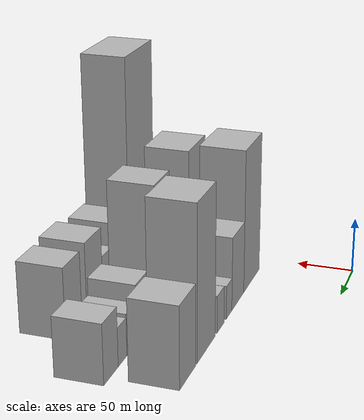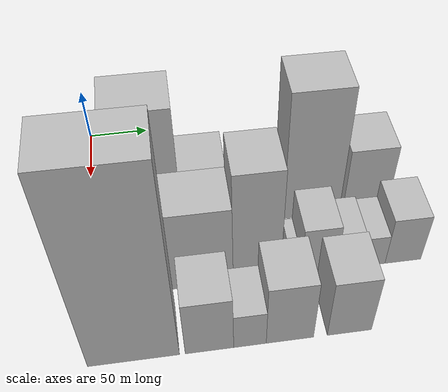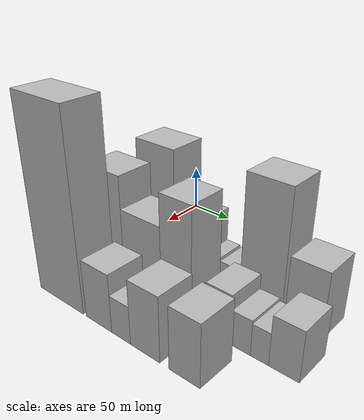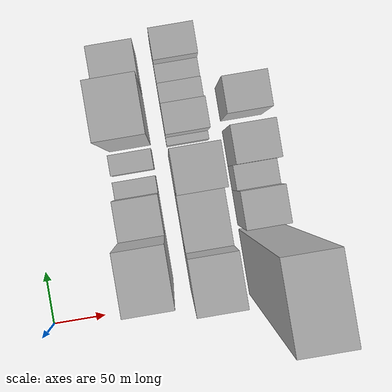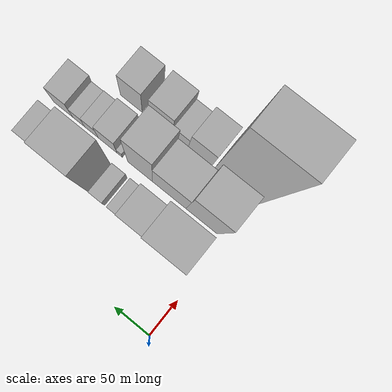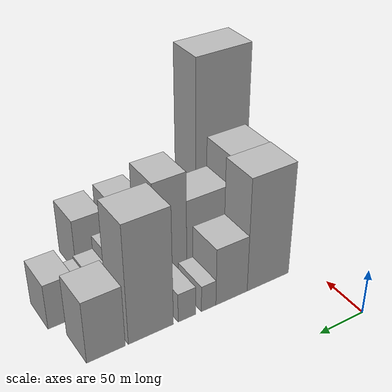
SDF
<sdf version="1.6">
 <world name="default">
  <model name="building_28">
   <static>1</static>
   <pose>100.0000 47.9363 0 0.000000 0.000000 0.000000</pose>
   <link name="link">
    <pose>0 0 64.50 0 0 0</pose>
    <collision name="collision"><geometry><box><size>40.0000 49.2560 129.0000</size></box></geometry></collision>
    <visual name="visual">
     <cast_shadows>0</cast_shadows>
     <geometry><box><size>40.0000 49.2560 129.0000</size></box></geometry>
     <material>
      <script>
       <uri>model://HANNAS_wall/materials/scripts</uri>
       <uri>model://HANNAS_wall/materials/textures</uri>
       <name>vrc/HANNAS_wall</name>
      </script>
     </material>
    </visual>
   </link>
  </model>
  <model name="building_29">
   <static>1</static>
   <pose>100.0000 90.3240 0 0.000000 0.000000 0.000000</pose>
   <link name="link">
    <pose>0 0 33.00 0 0 0</pose>
    <collision name="collision"><geometry><box><size>40.0000 35.5196 66.0000</size></box></geometry></collision>
    <visual name="visual">
     <cast_shadows>0</cast_shadows>
     <geometry><box><size>40.0000 35.5196 66.0000</size></box></geometry>
     <material>
      <script>
       <uri>model://HANNAS_wall/materials/scripts</uri>
       <uri>model://HANNAS_wall/materials/textures</uri>
       <name>vrc/HANNAS_wall</name>
      </script>
     </material>
    </visual>
   </link>
  </model>
  <model name="building_30">
   <static>1</static>
   <pose>100.0000 116.0856 0 0.000000 0.000000 0.000000</pose>
   <link name="link">
    <pose>0 0 15.00 0 0 0</pose>
    <collision name="collision"><geometry><box><size>40.0000 16.0036 30.0000</size></box></geometry></collision>
    <visual name="visual">
     <cast_shadows>0</cast_shadows>
     <geometry><box><size>40.0000 16.0036 30.0000</size></box></geometry>
     <material>
      <script>
       <uri>model://HANNAS_wall/materials/scripts</uri>
       <uri>model://HANNAS_wall/materials/textures</uri>
       <name>vrc/HANNAS_wall</name>
      </script>
     </material>
    </visual>
   </link>
  </model>
  <model name="building_31">
   <static>1</static>
   <pose>100.0000 139.5563 0 0.000000 0.000000 0.000000</pose>
   <link name="link">
    <pose>0 0 16.50 0 0 0</pose>
    <collision name="collision"><geometry><box><size>40.0000 18.9379 33.0000</size></box></geometry></collision>
    <visual name="visual">
     <cast_shadows>0</cast_shadows>
     <geometry><box><size>40.0000 18.9379 33.0000</size></box></geometry>
     <material>
      <script>
       <uri>model://HANNAS_wall/materials/scripts</uri>
       <uri>model://HANNAS_wall/materials/textures</uri>
       <name>vrc/HANNAS_wall</name>
      </script>
     </material>
    </visual>
   </link>
  </model>
  <model name="building_32">
   <static>1</static>
   <pose>100.0000 177.0604 0 0.000000 0.000000 0.000000</pose>
   <link name="link">
    <pose>0 0 66.00 0 0 0</pose>
    <collision name="collision"><geometry><box><size>40.0000 46.0703 132.0000</size></box></geometry></collision>
    <visual name="visual">
     <cast_shadows>0</cast_shadows>
     <geometry><box><size>40.0000 46.0703 132.0000</size></box></geometry>
     <material>
      <script>
       <uri>model://HANNAS_wall/materials/scripts</uri>
       <uri>model://HANNAS_wall/materials/textures</uri>
       <name>vrc/HANNAS_wall</name>
      </script>
     </material>
    </visual>
   </link>
  </model>
  <model name="building_33">
   <static>1</static>
   <pose>100.0000 221.8283 0 0.000000 0.000000 0.000000</pose>
   <link name="link">
    <pose>0 0 34.50 0 0 0</pose>
    <collision name="collision"><geometry><box><size>40.0000 37.4654 69.0000</size></box></geometry></collision>
    <visual name="visual">
     <cast_shadows>0</cast_shadows>
     <geometry><box><size>40.0000 37.4654 69.0000</size></box></geometry>
     <material>
      <script>
       <uri>model://HANNAS_wall/materials/scripts</uri>
       <uri>model://HANNAS_wall/materials/textures</uri>
       <name>vrc/HANNAS_wall</name>
      </script>
     </material>
    </visual>
   </link>
  </model>
  <model name="building_76">
   <static>1</static>
   <pose>155.0000 34.3568 0 0.000000 0.000000 0.000000</pose>
   <link name="link">
    <pose>0 0 58.50 0 0 0</pose>
    <collision name="collision"><geometry><box><size>40.0000 45.1409 117.0000</size></box></geometry></collision>
    <visual name="visual">
     <cast_shadows>0</cast_shadows>
     <geometry><box><size>40.0000 45.1409 117.0000</size></box></geometry>
     <material>
      <script>
       <uri>model://HANNAS_wall/materials/scripts</uri>
       <uri>model://HANNAS_wall/materials/textures</uri>
       <name>vrc/HANNAS_wall</name>
      </script>
     </material>
    </visual>
   </link>
  </model>
  <model name="building_77">
   <static>1</static>
   <pose>155.0000 81.2284 0 0.000000 0.000000 0.000000</pose>
   <link name="link">
    <pose>0 0 42.00 0 0 0</pose>
    <collision name="collision"><geometry><box><size>40.0000 48.6025 84.0000</size></box></geometry></collision>
    <visual name="visual">
     <cast_shadows>0</cast_shadows>
     <geometry><box><size>40.0000 48.6025 84.0000</size></box></geometry>
     <material>
      <script>
       <uri>model://HANNAS_wall/materials/scripts</uri>
       <uri>model://HANNAS_wall/materials/textures</uri>
       <name>vrc/HANNAS_wall</name>
      </script>
     </material>
    </visual>
   </link>
  </model>
  <model name="building_78">
   <static>1</static>
   <pose>155.0000 123.5292 0 0.000000 0.000000 0.000000</pose>
   <link name="link">
    <pose>0 0 58.50 0 0 0</pose>
    <collision name="collision"><geometry><box><size>40.0000 35.9991 117.0000</size></box></geometry></collision>
    <visual name="visual">
     <cast_shadows>0</cast_shadows>
     <geometry><box><size>40.0000 35.9991 117.0000</size></box></geometry>
     <material>
      <script>
       <uri>model://HANNAS_wall/materials/scripts</uri>
       <uri>model://HANNAS_wall/materials/textures</uri>
       <name>vrc/HANNAS_wall</name>
      </script>
     </material>
    </visual>
   </link>
  </model>
  <model name="building_79">
   <static>1</static>
   <pose>155.0000 153.4789 0 0.000000 0.000000 0.000000</pose>
   <link name="link">
    <pose>0 0 9.00 0 0 0</pose>
    <collision name="collision"><geometry><box><size>40.0000 7.9003 18.0000</size></box></geometry></collision>
    <visual name="visual">
     <cast_shadows>0</cast_shadows>
     <geometry><box><size>40.0000 7.9003 18.0000</size></box></geometry>
     <material>
      <script>
       <uri>model://HANNAS_wall/materials/scripts</uri>
       <uri>model://HANNAS_wall/materials/textures</uri>
       <name>vrc/HANNAS_wall</name>
      </script>
     </material>
    </visual>
   </link>
  </model>
  <model name="building_80">
   <static>1</static>
   <pose>155.0000 171.3089 0 0.000000 0.000000 0.000000</pose>
   <link name="link">
    <pose>0 0 25.50 0 0 0</pose>
    <collision name="collision"><geometry><box><size>40.0000 27.7598 51.0000</size></box></geometry></collision>
    <visual name="visual">
     <cast_shadows>0</cast_shadows>
     <geometry><box><size>40.0000 27.7598 51.0000</size></box></geometry>
     <material>
      <script>
       <uri>model://HANNAS_wall/materials/scripts</uri>
       <uri>model://HANNAS_wall/materials/textures</uri>
       <name>vrc/HANNAS_wall</name>
      </script>
     </material>
    </visual>
   </link>
  </model>
  <model name="building_81">
   <static>1</static>
   <pose>155.0000 195.3613 0 0.000000 0.000000 0.000000</pose>
   <link name="link">
    <pose>0 0 18.00 0 0 0</pose>
    <collision name="collision"><geometry><box><size>40.0000 20.3450 36.0000</size></box></geometry></collision>
    <visual name="visual">
     <cast_shadows>0</cast_shadows>
     <geometry><box><size>40.0000 20.3450 36.0000</size></box></geometry>
     <material>
      <script>
       <uri>model://HANNAS_wall/materials/scripts</uri>
       <uri>model://HANNAS_wall/materials/textures</uri>
       <name>vrc/HANNAS_wall</name>
      </script>
     </material>
    </visual>
   </link>
  </model>
  <model name="building_82">
   <static>1</static>
   <pose>155.0000 214.4098 0 0.000000 0.000000 0.000000</pose>
   <link name="link">
    <pose>0 0 16.50 0 0 0</pose>
    <collision name="collision"><geometry><box><size>40.0000 17.7520 33.0000</size></box></geometry></collision>
    <visual name="visual">
     <cast_shadows>0</cast_shadows>
     <geometry><box><size>40.0000 17.7520 33.0000</size></box></geometry>
     <material>
      <script>
       <uri>model://HANNAS_wall/materials/scripts</uri>
       <uri>model://HANNAS_wall/materials/textures</uri>
       <name>vrc/HANNAS_wall</name>
      </script>
     </material>
    </visual>
   </link>
  </model>
  <model name="building_83">
   <static>1</static>
   <pose>155.0000 237.5512 0 0.000000 0.000000 0.000000</pose>
   <link name="link">
    <pose>0 0 25.50 0 0 0</pose>
    <collision name="collision"><geometry><box><size>40.0000 28.5307 51.0000</size></box></geometry></collision>
    <visual name="visual">
     <cast_shadows>0</cast_shadows>
     <geometry><box><size>40.0000 28.5307 51.0000</size></box></geometry>
     <material>
      <script>
       <uri>model://HANNAS_wall/materials/scripts</uri>
       <uri>model://HANNAS_wall/materials/textures</uri>
       <name>vrc/HANNAS_wall</name>
      </script>
     </material>
    </visual>
   </link>
  </model>
  <model name="building_130">
   <static>1</static>
   <pose>210.0000 28.4545 0 0.000000 0.000000 0.000000</pose>
   <link name="link">
    <pose>0 0 97.50 0 0 0</pose>
    <collision name="collision"><geometry><box><size>40.0000 63.5218 195.0000</size></box></geometry></collision>
    <visual name="visual">
     <cast_shadows>0</cast_shadows>
     <geometry><box><size>40.0000 63.5218 195.0000</size></box></geometry>
     <material>
      <script>
       <uri>model://HANNAS_wall/materials/scripts</uri>
       <uri>model://HANNAS_wall/materials/textures</uri>
       <name>vrc/HANNAS_wall</name>
      </script>
     </material>
    </visual>
   </link>
  </model>
  <model name="building_131">
   <static>1</static>
   <pose>210.0000 81.2528 0 0.000000 0.000000 0.000000</pose>
   <link name="link">
    <pose>0 0 30.00 0 0 0</pose>
    <collision name="collision"><geometry><box><size>40.0000 34.0748 60.0000</size></box></geometry></collision>
    <visual name="visual">
     <cast_shadows>0</cast_shadows>
     <geometry><box><size>40.0000 34.0748 60.0000</size></box></geometry>
     <material>
      <script>
       <uri>model://HANNAS_wall/materials/scripts</uri>
       <uri>model://HANNAS_wall/materials/textures</uri>
       <name>vrc/HANNAS_wall</name>
      </script>
     </material>
    </visual>
   </link>
  </model>
  <model name="building_132">
   <static>1</static>
   <pose>210.0000 109.8791 0 0.000000 0.000000 0.000000</pose>
   <link name="link">
    <pose>0 0 19.50 0 0 0</pose>
    <collision name="collision"><geometry><box><size>40.0000 23.1778 39.0000</size></box></geometry></collision>
    <visual name="visual">
     <cast_shadows>0</cast_shadows>
     <geometry><box><size>40.0000 23.1778 39.0000</size></box></geometry>
     <material>
      <script>
       <uri>model://HANNAS_wall/materials/scripts</uri>
       <uri>model://HANNAS_wall/materials/textures</uri>
       <name>vrc/HANNAS_wall</name>
      </script>
     </material>
    </visual>
   </link>
  </model>
  <model name="building_133">
   <static>1</static>
   <pose>210.0000 138.4727 0 0.000000 0.000000 0.000000</pose>
   <link name="link">
    <pose>0 0 33.00 0 0 0</pose>
    <collision name="collision"><geometry><box><size>40.0000 34.0093 66.0000</size></box></geometry></collision>
    <visual name="visual">
     <cast_shadows>0</cast_shadows>
     <geometry><box><size>40.0000 34.0093 66.0000</size></box></geometry>
     <material>
      <script>
       <uri>model://HANNAS_wall/materials/scripts</uri>
       <uri>model://HANNAS_wall/materials/textures</uri>
       <name>vrc/HANNAS_wall</name>
      </script>
     </material>
    </visual>
   </link>
  </model>
  <model name="building_134">
   <static>1</static>
   <pose>210.0000 181.6205 0 0.000000 0.000000 0.000000</pose>
   <link name="link">
    <pose>0 0 31.50 0 0 0</pose>
    <collision name="collision"><geometry><box><size>40.0000 32.2865 63.0000</size></box></geometry></collision>
    <visual name="visual">
     <cast_shadows>0</cast_shadows>
     <geometry><box><size>40.0000 32.2865 63.0000</size></box></geometry>
     <material>
      <script>
       <uri>model://HANNAS_wall/materials/scripts</uri>
       <uri>model://HANNAS_wall/materials/textures</uri>
       <name>vrc/HANNAS_wall</name>
      </script>
     </material>
    </visual>
   </link>
  </model>
 </world>
</sdf>
